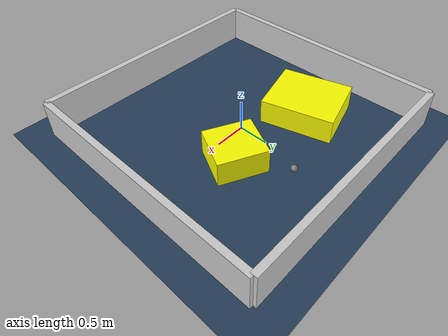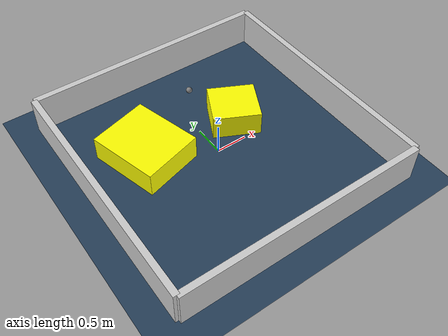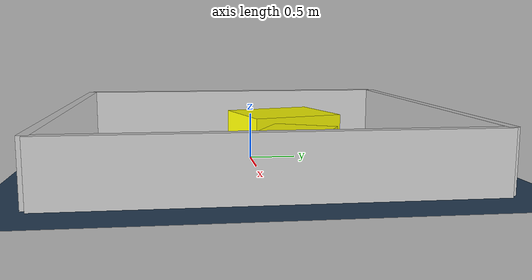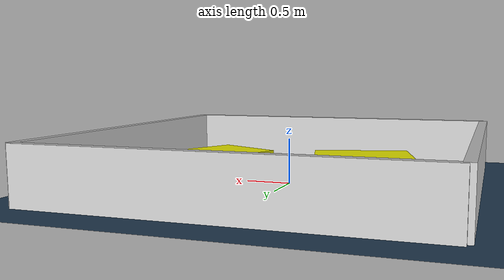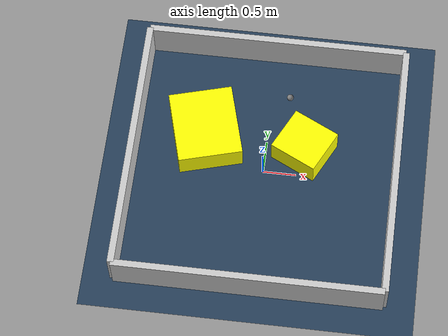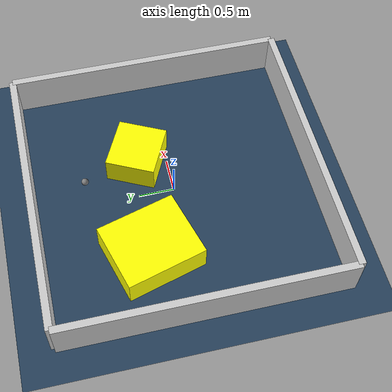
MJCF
<?xml version="1.0" ?>
<mujoco model="generated_environment">
  <option timestep="0.01" integrator="RK4" cone="elliptic"/>
  <default>
    <geom density="1"/>
  </default>
  <asset>
    <texture builtin="gradient" height="3072" rgb1="0.3 0.5 0.7" rgb2="0 0 0" type="skybox" width="512"/>
    <texture builtin="checker" height="300" mark="edge" markrgb="0.8 0.8 0.8" name="groundplane" rgb1="0.2 0.3 0.4" rgb2="0.1 0.2 0.3" type="2d" width="300"/>
    <material name="groundplane" reflectance="0.2" texrepeat="5 5" texture="groundplane" texuniform="true"/>
    <material name="robot" rgba="0.0 1.0 0.0 1"/>
  </asset>
  <worldbody>
    <light dir="0 0 -1" directional="true" pos="0 0 1.5"/>
    <geom condim="4" friction="1.0 0.005 0.001" material="groundplane" name="floor" size="0 0 0.05" type="plane"/>
    <body name="walls">
      <geom name="wall_1" condim="4" pos="-2.0 0.0 0.3" rgba="0.800000011920929 0.800000011920929 0.800000011920929 1.0" size="0.05 2.0 0.3" type="box"/>
      <geom name="wall_2" condim="4" pos="2.0 0.0 0.3" rgba="0.800000011920929 0.800000011920929 0.800000011920929 1.0" size="0.05 2.0 0.3" type="box"/>
      <geom name="wall_3" condim="4" pos="0.0 -2.0 0.3" rgba="0.800000011920929 0.800000011920929 0.800000011920929 1.0" size="2.0 0.05 0.3" type="box"/>
      <geom name="wall_4" condim="4" pos="0.0 2.0 0.3" rgba="0.800000011920929 0.800000011920929 0.800000011920929 1.0" size="2.0 0.05 0.3" type="box"/>
    </body>
    <body name="robot">
      <joint name="joint_x" type="slide" pos="0 0 0" axis="1 0 0"/>
      <joint name="joint_y" type="slide" pos="0 0 0" axis="0 1 0"/>
      <geom name="robot" type="sphere" pos="0.28290444157104755 1.227713321362566 0.2" size="0.05" mass="5." friction="1.0 0.005 0.0001" condim="4"/>
      <site name="sensor_ball"/>
    </body>
    <body name="obstacle_1_movable">
      <geom name="obstacle_1_movable" condim="4" pos="0.5873896339868765 0.4170815495223996 0.2" euler="0 0 243.57431184719772" friction="1.0 0.005 0.001" rgba="1 1 0 1" size="0.35227560537406416 0.3772237619310048 0.2" type="box" mass="0.1"/>
      <joint type="free"/>
    </body>
    <body name="obstacle_2_movable">
      <geom name="obstacle_2_movable" condim="4" pos="-0.9486493957676171 0.5262543801504551 0.2" euler="0 0 105.6121909402086" friction="1.0 0.005 0.001" rgba="1 1 0 1" size="0.569160662249079 0.48864003496161273 0.2" type="box" mass="0.1"/>
      <joint type="free"/>
    </body>
  </worldbody>
  <actuator>
    <motor name="actuator_x" joint="joint_x" gear="1" ctrlrange="-1 1"/>
    <motor name="actuator_y" joint="joint_y" gear="1" ctrlrange="-1 1"/>
  </actuator>
</mujoco>
